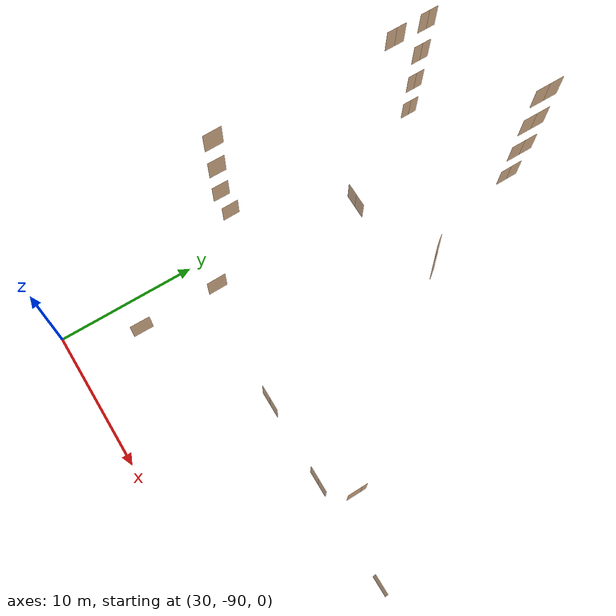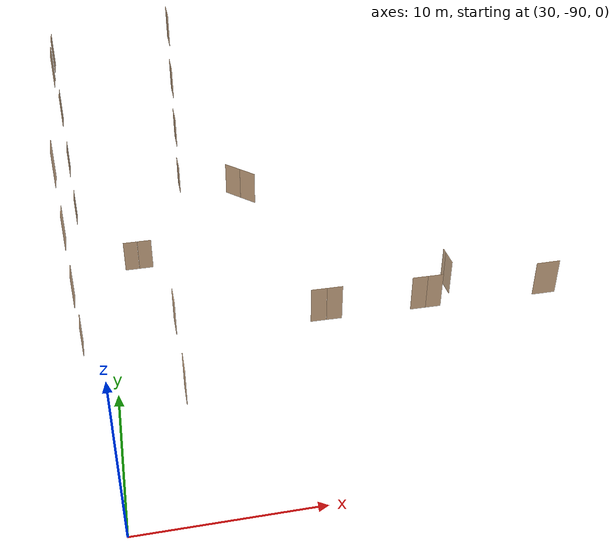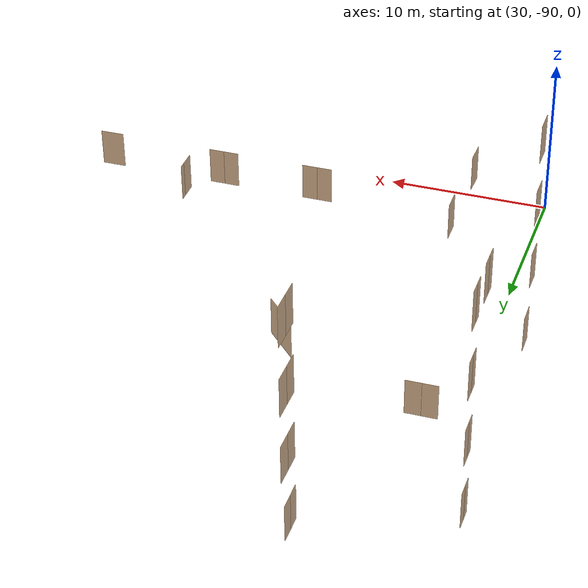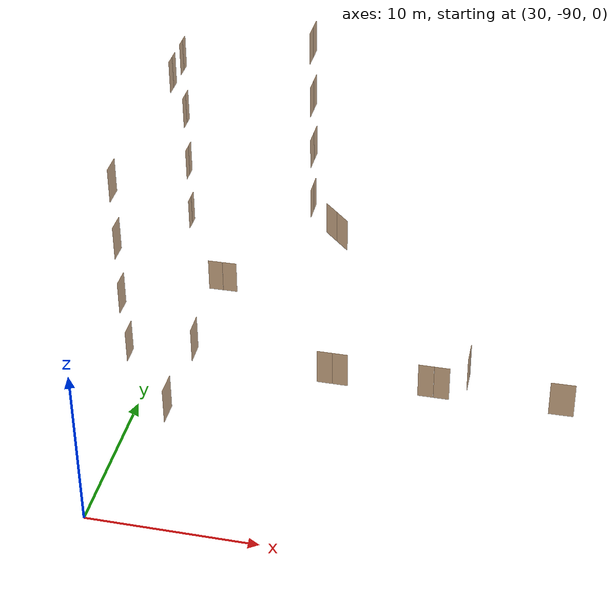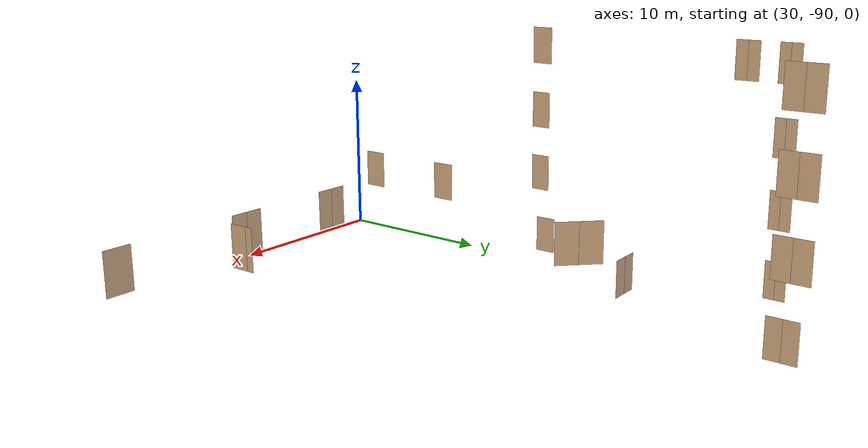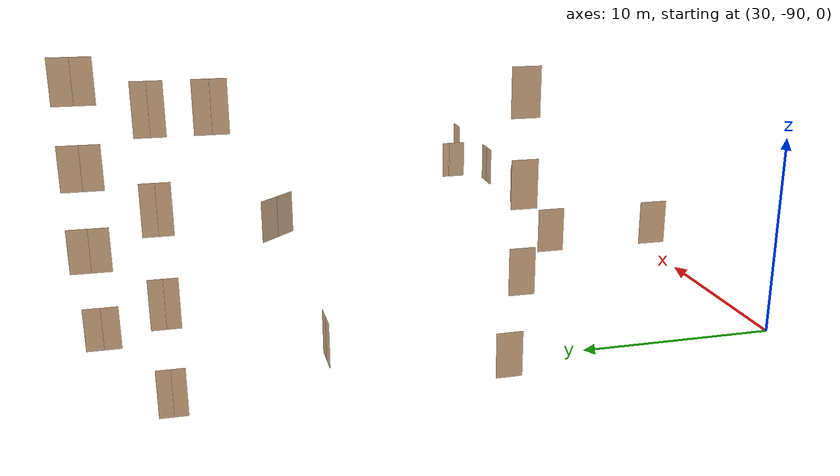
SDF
<sdf version="1.7">
 <world name="sim_world">
  <model name="Snull9">
   <pose>35.663947279991014 -57.37185901504682 0.0 0 0 -1.5624884779698478</pose>
   <link name="right">
    <pose>0.42133590085702205 0 1.11 0 0 0</pose>
    <visual name="right_visual">
     <geometry><box><size>0.8326718017140441 0.03 2.2</size></box></geometry>
     <material>
      <ambient>0.5 0.25 0 0.6</ambient>
      <diffuse>0.5 0.25 0 0.6</diffuse>
      <pbr><metal><metalness>0.0</metalness></metal></pbr>
     </material>
    </visual>
    <collision name="right_collision">
     <geometry><box><size>0.8326718017140441 0.03 2.2</size></box></geometry>
     <surface><contact><collide_bitmask>0x02</collide_bitmask></contact></surface>
    </collision>
    <inertial>
     <mass>50.0</mass>
     <inertia><ixx>20.17041666666667</ixx><iyy>23.055593039040474</iyy><izz>2.892676372373802</izz></inertia>
    </inertial>
   </link>
   <joint name="right_joint" type="revolute">
    <parent>world</parent>
    <child>right</child>
    <axis><xyz>0 0 -1</xyz><limit><lower>0</lower><upper>1.57</upper></limit></axis>
    <pose>0.42133590085702205 0 0 0 0 0</pose>
   </joint>
   <link name="left">
    <pose>-0.42133590085702205 0 1.11 0 0 0</pose>
    <visual name="left_visual">
     <geometry><box><size>0.8326718017140441 0.03 2.2</size></box></geometry>
     <material>
      <ambient>0.5 0.25 0 0.6</ambient>
      <diffuse>0.5 0.25 0 0.6</diffuse>
      <pbr><metal><metalness>0.0</metalness></metal></pbr>
     </material>
    </visual>
    <collision name="left_collision">
     <geometry><box><size>0.8326718017140441 0.03 2.2</size></box></geometry>
     <surface><contact><collide_bitmask>0x02</collide_bitmask></contact></surface>
    </collision>
    <inertial>
     <mass>50.0</mass>
     <inertia><ixx>20.17041666666667</ixx><iyy>23.055593039040474</iyy><izz>2.892676372373802</izz></inertia>
    </inertial>
   </link>
   <joint name="left_joint" type="revolute">
    <parent>world</parent>
    <child>left</child>
    <axis><xyz>0 0 -1</xyz><limit><lower>-1.57</lower><upper>0</upper></limit></axis>
    <pose>-0.42133590085702205 0 0 0 0 0</pose>
   </joint>
   <plugin name="register_component" filename="libregister_component.so">
    <component name="Door">
     <v_max_door>0.5</v_max_door>
     <a_max_door>0.3</a_max_door>
     <a_nom_door>0.15</a_nom_door>
     <dx_min_door>0.01</dx_min_door>
     <f_max_door>500.0</f_max_door>
     <ros_interface>true</ros_interface>
     <door name="Snull9" type="DoubleSwingDoor" left_joint_name="left_joint" right_joint_name="right_joint"/>
    </component>
   </plugin>
  </model>
  <model name="Snull15">
   <pose>28.084941940783317 -75.57958406451849 0.0 0 0 1.5806374847145241</pose>
   <link name="right">
    <pose>0 0 1.11 0 0 0</pose>
    <visual name="right_visual">
     <geometry><box><size>1.2572084339557512 0.03 2.2</size></box></geometry>
     <material>
      <ambient>0.5 0.25 0 0.6</ambient>
      <diffuse>0.5 0.25 0 0.6</diffuse>
      <pbr><metal><metalness>0.0</metalness></metal></pbr>
     </material>
    </visual>
    <collision name="right_collision">
     <geometry><box><size>1.2572084339557512 0.03 2.2</size></box></geometry>
     <surface><contact><collide_bitmask>0x02</collide_bitmask></contact></surface>
    </collision>
    <inertial>
     <mass>50.0</mass>
     <inertia><ixx>20.17041666666667</ixx><iyy>26.752387693372807</iyy><izz>6.589471026706136</izz></inertia>
    </inertial>
   </link>
   <joint name="right_joint" type="revolute">
    <parent>world</parent>
    <child>right</child>
    <axis><xyz>0 0 1</xyz><limit><lower>0</lower><upper>1.57</upper></limit></axis>
    <pose>0.6336042169778756 0 0 0 0 0</pose>
   </joint>
   <plugin name="register_component" filename="libregister_component.so">
    <component name="Door">
     <v_max_door>0.5</v_max_door>
     <a_max_door>0.3</a_max_door>
     <a_nom_door>0.15</a_nom_door>
     <dx_min_door>0.01</dx_min_door>
     <f_max_door>500.0</f_max_door>
     <ros_interface>true</ros_interface>
     <door name="Snull15" type="SwingDoor" left_joint_name="empty_joint" right_joint_name="right_joint"/>
    </component>
   </plugin>
  </model>
  <model name="Snull19">
   <pose>27.81230631370644 -60.652111413956575 0.0 0 0 1.5707963267948966</pose>
   <link name="right">
    <pose>0.3098140611581979 0 1.11 0 0 0</pose>
    <visual name="right_visual">
     <geometry><box><size>0.6096281223163957 0.03 2.2</size></box></geometry>
     <material>
      <ambient>0.5 0.25 0 0.6</ambient>
      <diffuse>0.5 0.25 0 0.6</diffuse>
      <pbr><metal><metalness>0.0</metalness></metal></pbr>
     </material>
    </visual>
    <collision name="right_collision">
     <geometry><box><size>0.6096281223163957 0.03 2.2</size></box></geometry>
     <surface><contact><collide_bitmask>0x02</collide_bitmask></contact></surface>
    </collision>
    <inertial>
     <mass>50.0</mass>
     <inertia><ixx>20.17041666666667</ixx><iyy>21.71519353132923</iyy><izz>1.55227686466256</izz></inertia>
    </inertial>
   </link>
   <joint name="right_joint" type="prismatic">
    <parent>world</parent>
    <child>right</child>
    <axis>
     <xyz>1 0 0</xyz>
     <limit><lower>0.0</lower><upper>0.6196281223163957</upper><effort>500.0</effort></limit>
    </axis>
   </joint>
   <link name="left">
    <pose>-0.3098140611581979 0 1.11 0 0 0</pose>
    <visual name="left_visual">
     <geometry><box><size>0.6096281223163957 0.03 2.2</size></box></geometry>
     <material>
      <ambient>0.5 0.25 0 0.6</ambient>
      <diffuse>0.5 0.25 0 0.6</diffuse>
      <pbr><metal><metalness>0.0</metalness></metal></pbr>
     </material>
    </visual>
    <collision name="left_collision">
     <geometry><box><size>0.6096281223163957 0.03 2.2</size></box></geometry>
     <surface><contact><collide_bitmask>0x02</collide_bitmask></contact></surface>
    </collision>
    <inertial>
     <mass>50.0</mass>
     <inertia><ixx>20.17041666666667</ixx><iyy>21.71519353132923</iyy><izz>1.55227686466256</izz></inertia>
    </inertial>
   </link>
   <joint name="left_joint" type="prismatic">
    <parent>world</parent>
    <child>left</child>
    <axis>
     <xyz>1 0 0</xyz>
     <limit><lower>-0.6196281223163957</lower><upper>0.0</upper><effort>500.0</effort></limit>
    </axis>
   </joint>
   <plugin name="register_component" filename="libregister_component.so">
    <component name="Door">
     <v_max_door>0.2</v_max_door>
     <a_max_door>0.2</a_max_door>
     <a_nom_door>0.08</a_nom_door>
     <dx_min_door>0.001</dx_min_door>
     <f_max_door>100.0</f_max_door>
     <ros_interface>true</ros_interface>
     <door name="Snull19" type="DoubleSlidingDoor" left_joint_name="left_joint" right_joint_name="right_joint"/>
    </component>
   </plugin>
  </model>
  <model name="Snull21">
   <pose>31.943863644849326 -67.73421573386099 0.0 0 0 -3.1266463520142143</pose>
   <link name="right">
    <pose>0.4677836453547332 0 1.11 0 0 0</pose>
    <visual name="right_visual">
     <geometry><box><size>0.9255672907094664 0.03 2.2</size></box></geometry>
     <material>
      <ambient>0.5 0.25 0 0.6</ambient>
      <diffuse>0.5 0.25 0 0.6</diffuse>
      <pbr><metal><metalness>0.0</metalness></metal></pbr>
     </material>
    </visual>
    <collision name="right_collision">
     <geometry><box><size>0.9255672907094664 0.03 2.2</size></box></geometry>
     <surface><contact><collide_bitmask>0x02</collide_bitmask></contact></surface>
    </collision>
    <inertial>
     <mass>50.0</mass>
     <inertia><ixx>20.17041666666667</ixx><iyy>23.736145040130264</iyy><izz>3.573228373463592</izz></inertia>
    </inertial>
   </link>
   <joint name="right_joint" type="revolute">
    <parent>world</parent>
    <child>right</child>
    <axis><xyz>0 0 1</xyz><limit><lower>0</lower><upper>1.57</upper></limit></axis>
    <pose>0.4677836453547332 0 0 0 0 0</pose>
   </joint>
   <link name="left">
    <pose>-0.4677836453547332 0 1.11 0 0 0</pose>
    <visual name="left_visual">
     <geometry><box><size>0.9255672907094664 0.03 2.2</size></box></geometry>
     <material>
      <ambient>0.5 0.25 0 0.6</ambient>
      <diffuse>0.5 0.25 0 0.6</diffuse>
      <pbr><metal><metalness>0.0</metalness></metal></pbr>
     </material>
    </visual>
    <collision name="left_collision">
     <geometry><box><size>0.9255672907094664 0.03 2.2</size></box></geometry>
     <surface><contact><collide_bitmask>0x02</collide_bitmask></contact></surface>
    </collision>
    <inertial>
     <mass>50.0</mass>
     <inertia><ixx>20.17041666666667</ixx><iyy>23.736145040130264</iyy><izz>3.573228373463592</izz></inertia>
    </inertial>
   </link>
   <joint name="left_joint" type="revolute">
    <parent>world</parent>
    <child>left</child>
    <axis><xyz>0 0 1</xyz><limit><lower>-1.57</lower><upper>0</upper></limit></axis>
    <pose>-0.4677836453547332 0 0 0 0 0</pose>
   </joint>
   <plugin name="register_component" filename="libregister_component.so">
    <component name="Door">
     <v_max_door>0.5</v_max_door>
     <a_max_door>0.3</a_max_door>
     <a_nom_door>0.15</a_nom_door>
     <dx_min_door>0.01</dx_min_door>
     <f_max_door>500.0</f_max_door>
     <ros_interface>true</ros_interface>
     <door name="Snull21" type="DoubleSwingDoor" left_joint_name="left_joint" right_joint_name="right_joint"/>
    </component>
   </plugin>
  </model>
  <model name="0null9">
   <pose>35.66852107680243 -57.16532875331363 4.0 0 0 -1.5745061043989732</pose>
   <link name="right">
    <pose>0.488130155778294 0 1.11 0 0 0</pose>
    <visual name="right_visual">
     <geometry><box><size>0.966260311556588 0.03 2.2</size></box></geometry>
     <material>
      <ambient>0.5 0.25 0 0.6</ambient>
      <diffuse>0.5 0.25 0 0.6</diffuse>
      <pbr><metal><metalness>0.0</metalness></metal></pbr>
     </material>
    </visual>
    <collision name="right_collision">
     <geometry><box><size>0.966260311556588 0.03 2.2</size></box></geometry>
     <surface><contact><collide_bitmask>0x02</collide_bitmask></contact></surface>
    </collision>
    <inertial>
     <mass>50.0</mass>
     <inertia><ixx>20.17041666666667</ixx><iyy>24.056912457039317</iyy><izz>3.893995790372644</izz></inertia>
    </inertial>
   </link>
   <joint name="right_joint" type="revolute">
    <parent>world</parent>
    <child>right</child>
    <axis><xyz>0 0 1</xyz><limit><lower>0</lower><upper>1.57</upper></limit></axis>
    <pose>0.488130155778294 0 0 0 0 0</pose>
   </joint>
   <link name="left">
    <pose>-0.488130155778294 0 1.11 0 0 0</pose>
    <visual name="left_visual">
     <geometry><box><size>0.966260311556588 0.03 2.2</size></box></geometry>
     <material>
      <ambient>0.5 0.25 0 0.6</ambient>
      <diffuse>0.5 0.25 0 0.6</diffuse>
      <pbr><metal><metalness>0.0</metalness></metal></pbr>
     </material>
    </visual>
    <collision name="left_collision">
     <geometry><box><size>0.966260311556588 0.03 2.2</size></box></geometry>
     <surface><contact><collide_bitmask>0x02</collide_bitmask></contact></surface>
    </collision>
    <inertial>
     <mass>50.0</mass>
     <inertia><ixx>20.17041666666667</ixx><iyy>24.056912457039317</iyy><izz>3.893995790372644</izz></inertia>
    </inertial>
   </link>
   <joint name="left_joint" type="revolute">
    <parent>world</parent>
    <child>left</child>
    <axis><xyz>0 0 1</xyz><limit><lower>-1.57</lower><upper>0</upper></limit></axis>
    <pose>-0.488130155778294 0 0 0 0 0</pose>
   </joint>
   <plugin name="register_component" filename="libregister_component.so">
    <component name="Door">
     <v_max_door>0.5</v_max_door>
     <a_max_door>0.3</a_max_door>
     <a_nom_door>0.15</a_nom_door>
     <dx_min_door>0.01</dx_min_door>
     <f_max_door>500.0</f_max_door>
     <ros_interface>true</ros_interface>
     <door name="0null9" type="DoubleSwingDoor" left_joint_name="left_joint" right_joint_name="right_joint"/>
    </component>
   </plugin>
  </model>
  <model name="0null15">
   <pose>28.038363887540584 -76.04984505096512 4.0 0 0 1.565694645745355</pose>
   <link name="right">
    <pose>0 0 1.11 0 0 0</pose>
    <visual name="right_visual">
     <geometry><box><size>1.1975727472500945 0.03 2.2</size></box></geometry>
     <material>
      <ambient>0.5 0.25 0 0.6</ambient>
      <diffuse>0.5 0.25 0 0.6</diffuse>
      <pbr><metal><metalness>0.0</metalness></metal></pbr>
     </material>
    </visual>
    <collision name="right_collision">
     <geometry><box><size>1.1975727472500945 0.03 2.2</size></box></geometry>
     <surface><contact><collide_bitmask>0x02</collide_bitmask></contact></surface>
    </collision>
    <inertial>
     <mass>50.0</mass>
     <inertia><ixx>20.17041666666667</ixx><iyy>26.14241868731725</iyy><izz>5.979502020650578</izz></inertia>
    </inertial>
   </link>
   <joint name="right_joint" type="revolute">
    <parent>world</parent>
    <child>right</child>
    <axis><xyz>0 0 1</xyz><limit><lower>0</lower><upper>1.57</upper></limit></axis>
    <pose>0.6037863736250473 0 0 0 0 0</pose>
   </joint>
   <plugin name="register_component" filename="libregister_component.so">
    <component name="Door">
     <v_max_door>0.5</v_max_door>
     <a_max_door>0.3</a_max_door>
     <a_nom_door>0.15</a_nom_door>
     <dx_min_door>0.01</dx_min_door>
     <f_max_door>500.0</f_max_door>
     <ros_interface>true</ros_interface>
     <door name="0null15" type="SwingDoor" left_joint_name="empty_joint" right_joint_name="right_joint"/>
    </component>
   </plugin>
  </model>
  <model name="0null19">
   <pose>27.81230631370644 -60.652111413956575 4.0 0 0 1.5707963267948966</pose>
   <link name="right">
    <pose>0.3098140611581979 0 1.11 0 0 0</pose>
    <visual name="right_visual">
     <geometry><box><size>0.6096281223163957 0.03 2.2</size></box></geometry>
     <material>
      <ambient>0.5 0.25 0 0.6</ambient>
      <diffuse>0.5 0.25 0 0.6</diffuse>
      <pbr><metal><metalness>0.0</metalness></metal></pbr>
     </material>
    </visual>
    <collision name="right_collision">
     <geometry><box><size>0.6096281223163957 0.03 2.2</size></box></geometry>
     <surface><contact><collide_bitmask>0x02</collide_bitmask></contact></surface>
    </collision>
    <inertial>
     <mass>50.0</mass>
     <inertia><ixx>20.17041666666667</ixx><iyy>21.71519353132923</iyy><izz>1.55227686466256</izz></inertia>
    </inertial>
   </link>
   <joint name="right_joint" type="prismatic">
    <parent>world</parent>
    <child>right</child>
    <axis>
     <xyz>1 0 0</xyz>
     <limit><lower>0.0</lower><upper>0.6196281223163957</upper><effort>500.0</effort></limit>
    </axis>
   </joint>
   <link name="left">
    <pose>-0.3098140611581979 0 1.11 0 0 0</pose>
    <visual name="left_visual">
     <geometry><box><size>0.6096281223163957 0.03 2.2</size></box></geometry>
     <material>
      <ambient>0.5 0.25 0 0.6</ambient>
      <diffuse>0.5 0.25 0 0.6</diffuse>
      <pbr><metal><metalness>0.0</metalness></metal></pbr>
     </material>
    </visual>
    <collision name="left_collision">
     <geometry><box><size>0.6096281223163957 0.03 2.2</size></box></geometry>
     <surface><contact><collide_bitmask>0x02</collide_bitmask></contact></surface>
    </collision>
    <inertial>
     <mass>50.0</mass>
     <inertia><ixx>20.17041666666667</ixx><iyy>21.71519353132923</iyy><izz>1.55227686466256</izz></inertia>
    </inertial>
   </link>
   <joint name="left_joint" type="prismatic">
    <parent>world</parent>
    <child>left</child>
    <axis>
     <xyz>1 0 0</xyz>
     <limit><lower>-0.6196281223163957</lower><upper>0.0</upper><effort>500.0</effort></limit>
    </axis>
   </joint>
   <plugin name="register_component" filename="libregister_component.so">
    <component name="Door">
     <v_max_door>0.2</v_max_door>
     <a_max_door>0.2</a_max_door>
     <a_nom_door>0.08</a_nom_door>
     <dx_min_door>0.001</dx_min_door>
     <f_max_door>100.0</f_max_door>
     <ros_interface>true</ros_interface>
     <door name="0null19" type="DoubleSlidingDoor" left_joint_name="left_joint" right_joint_name="right_joint"/>
    </component>
   </plugin>
  </model>
  <model name="0null44">
   <pose>41.968468804838864 -80.45021095471002 4.0 0 0 0.0</pose>
   <link name="right">
    <pose>0.450033603405144 0 1.11 0 0 0</pose>
    <visual name="right_visual">
     <geometry><box><size>0.890067206810288 0.03 2.2</size></box></geometry>
     <material>
      <ambient>0.5 0.25 0 0.6</ambient>
      <diffuse>0.5 0.25 0 0.6</diffuse>
      <pbr><metal><metalness>0.0</metalness></metal></pbr>
     </material>
    </visual>
    <collision name="right_collision">
     <geometry><box><size>0.890067206810288 0.03 2.2</size></box></geometry>
     <surface><contact><collide_bitmask>0x02</collide_bitmask></contact></surface>
    </collision>
    <inertial>
     <mass>50.0</mass>
     <inertia><ixx>20.17041666666667</ixx><iyy>23.467581802662785</iyy><izz>3.3046651359961166</izz></inertia>
    </inertial>
   </link>
   <joint name="right_joint" type="revolute">
    <parent>world</parent>
    <child>right</child>
    <axis><xyz>0 0 -1</xyz><limit><lower>0</lower><upper>1.57</upper></limit></axis>
    <pose>0.450033603405144 0 0 0 0 0</pose>
   </joint>
   <link name="left">
    <pose>-0.450033603405144 0 1.11 0 0 0</pose>
    <visual name="left_visual">
     <geometry><box><size>0.890067206810288 0.03 2.2</size></box></geometry>
     <material>
      <ambient>0.5 0.25 0 0.6</ambient>
      <diffuse>0.5 0.25 0 0.6</diffuse>
      <pbr><metal><metalness>0.0</metalness></metal></pbr>
     </material>
    </visual>
    <collision name="left_collision">
     <geometry><box><size>0.890067206810288 0.03 2.2</size></box></geometry>
     <surface><contact><collide_bitmask>0x02</collide_bitmask></contact></surface>
    </collision>
    <inertial>
     <mass>50.0</mass>
     <inertia><ixx>20.17041666666667</ixx><iyy>23.467581802662785</iyy><izz>3.3046651359961166</izz></inertia>
    </inertial>
   </link>
   <joint name="left_joint" type="revolute">
    <parent>world</parent>
    <child>left</child>
    <axis><xyz>0 0 -1</xyz><limit><lower>-1.57</lower><upper>0</upper></limit></axis>
    <pose>-0.450033603405144 0 0 0 0 0</pose>
   </joint>
   <plugin name="register_component" filename="libregister_component.so">
    <component name="Door">
     <v_max_door>0.5</v_max_door>
     <a_max_door>0.3</a_max_door>
     <a_nom_door>0.15</a_nom_door>
     <dx_min_door>0.01</dx_min_door>
     <f_max_door>500.0</f_max_door>
     <ros_interface>true</ros_interface>
     <door name="0null44" type="DoubleSwingDoor" left_joint_name="left_joint" right_joint_name="right_joint"/>
    </component>
   </plugin>
  </model>
  <model name="0null45">
   <pose>47.80160922973525 -80.45021095471002 4.0 0 0 0.0</pose>
   <link name="right">
    <pose>0.45003360340514575 0 1.11 0 0 0</pose>
    <visual name="right_visual">
     <geometry><box><size>0.8900672068102915 0.03 2.2</size></box></geometry>
     <material>
      <ambient>0.5 0.25 0 0.6</ambient>
      <diffuse>0.5 0.25 0 0.6</diffuse>
      <pbr><metal><metalness>0.0</metalness></metal></pbr>
     </material>
    </visual>
    <collision name="right_collision">
     <geometry><box><size>0.8900672068102915 0.03 2.2</size></box></geometry>
     <surface><contact><collide_bitmask>0x02</collide_bitmask></contact></surface>
    </collision>
    <inertial>
     <mass>50.0</mass>
     <inertia><ixx>20.17041666666667</ixx><iyy>23.467581802662814</iyy><izz>3.3046651359961428</izz></inertia>
    </inertial>
   </link>
   <joint name="right_joint" type="revolute">
    <parent>world</parent>
    <child>right</child>
    <axis><xyz>0 0 -1</xyz><limit><lower>0</lower><upper>1.57</upper></limit></axis>
    <pose>0.45003360340514575 0 0 0 0 0</pose>
   </joint>
   <link name="left">
    <pose>-0.45003360340514575 0 1.11 0 0 0</pose>
    <visual name="left_visual">
     <geometry><box><size>0.8900672068102915 0.03 2.2</size></box></geometry>
     <material>
      <ambient>0.5 0.25 0 0.6</ambient>
      <diffuse>0.5 0.25 0 0.6</diffuse>
      <pbr><metal><metalness>0.0</metalness></metal></pbr>
     </material>
    </visual>
    <collision name="left_collision">
     <geometry><box><size>0.8900672068102915 0.03 2.2</size></box></geometry>
     <surface><contact><collide_bitmask>0x02</collide_bitmask></contact></surface>
    </collision>
    <inertial>
     <mass>50.0</mass>
     <inertia><ixx>20.17041666666667</ixx><iyy>23.467581802662814</iyy><izz>3.3046651359961428</izz></inertia>
    </inertial>
   </link>
   <joint name="left_joint" type="revolute">
    <parent>world</parent>
    <child>left</child>
    <axis><xyz>0 0 -1</xyz><limit><lower>-1.57</lower><upper>0</upper></limit></axis>
    <pose>-0.45003360340514575 0 0 0 0 0</pose>
   </joint>
   <plugin name="register_component" filename="libregister_component.so">
    <component name="Door">
     <v_max_door>0.5</v_max_door>
     <a_max_door>0.3</a_max_door>
     <a_nom_door>0.15</a_nom_door>
     <dx_min_door>0.01</dx_min_door>
     <f_max_door>500.0</f_max_door>
     <ros_interface>true</ros_interface>
     <door name="0null45" type="DoubleSwingDoor" left_joint_name="left_joint" right_joint_name="right_joint"/>
    </component>
   </plugin>
  </model>
  <model name="0null46">
   <pose>49.5582459022514 -78.73606392114397 4.0 0 0 1.5927314753126312</pose>
   <link name="right">
    <pose>0.5027852228706735 0 1.11 0 0 0</pose>
    <visual name="right_visual">
     <geometry><box><size>0.3922281782965389 0.03 2.2</size></box></geometry>
     <material>
      <ambient>0.5 0.25 0 0.6</ambient>
      <diffuse>0.5 0.25 0 0.6</diffuse>
      <pbr><metal><metalness>0.0</metalness></metal></pbr>
     </material>
    </visual>
    <collision name="right_collision">
     <geometry><box><size>0.3922281782965389 0.03 2.2</size></box></geometry>
     <surface><contact><collide_bitmask>0x02</collide_bitmask></contact></surface>
    </collision>
    <inertial>
     <mass>50.0</mass>
     <inertia><ixx>20.17041666666667</ixx><iyy>20.807678932707592</iyy><izz>0.644762266040923</izz></inertia>
    </inertial>
   </link>
   <joint name="right_joint" type="revolute">
    <parent>world</parent>
    <child>right</child>
    <axis><xyz>0 0 -1</xyz><limit><lower>0</lower><upper>1.57</upper></limit></axis>
    <pose>0.20111408914826945 0 0 0 0 0</pose>
   </joint>
   <link name="left">
    <pose>-0.20111408914826945 0 1.11 0 0 0</pose>
    <visual name="left_visual">
     <geometry><box><size>0.995570445741347 0.03 2.2</size></box></geometry>
     <material>
      <ambient>0.5 0.25 0 0.6</ambient>
      <diffuse>0.5 0.25 0 0.6</diffuse>
      <pbr><metal><metalness>0.0</metalness></metal></pbr>
     </material>
    </visual>
    <collision name="left_collision">
     <geometry><box><size>0.995570445741347 0.03 2.2</size></box></geometry>
     <surface><contact><collide_bitmask>0x02</collide_bitmask></contact></surface>
    </collision>
    <inertial>
     <mass>50.0</mass>
     <inertia><ixx>20.17041666666667</ixx><iyy>24.296502135140106</iyy><izz>4.133585468473435</izz></inertia>
    </inertial>
   </link>
   <joint name="left_joint" type="revolute">
    <parent>world</parent>
    <child>left</child>
    <axis><xyz>0 0 -1</xyz><limit><lower>-1.57</lower><upper>0</upper></limit></axis>
    <pose>-0.5027852228706735 0 0 0 0 0</pose>
   </joint>
   <plugin name="register_component" filename="libregister_component.so">
    <component name="Door">
     <v_max_door>0.5</v_max_door>
     <a_max_door>0.3</a_max_door>
     <a_nom_door>0.15</a_nom_door>
     <dx_min_door>0.01</dx_min_door>
     <f_max_door>500.0</f_max_door>
     <ros_interface>true</ros_interface>
     <door name="0null46" type="DoubleSwingDoor" left_joint_name="left_joint" right_joint_name="right_joint"/>
    </component>
   </plugin>
  </model>
  <model name="0null47">
   <pose>55.0205727513721 -80.46839413060519 4.0 0 0 -3.1302739790294476</pose>
   <link name="right">
    <pose>0 0 1.11 0 0 0</pose>
    <visual name="right_visual">
     <geometry><box><size>1.4018815002880707 0.03 2.2</size></box></geometry>
     <material>
      <ambient>0.5 0.25 0 0.6</ambient>
      <diffuse>0.5 0.25 0 0.6</diffuse>
      <pbr><metal><metalness>0.0</metalness></metal></pbr>
     </material>
    </visual>
    <collision name="right_collision">
     <geometry><box><size>1.4018815002880707 0.03 2.2</size></box></geometry>
     <surface><contact><collide_bitmask>0x02</collide_bitmask></contact></surface>
    </collision>
    <inertial>
     <mass>50.0</mass>
     <inertia><ixx>20.17041666666667</ixx><iyy>28.355298920208057</iyy><izz>8.192382253541382</izz></inertia>
    </inertial>
   </link>
   <joint name="right_joint" type="revolute">
    <parent>world</parent>
    <child>right</child>
    <axis><xyz>0 0 -1</xyz><limit><lower>0</lower><upper>1.57</upper></limit></axis>
    <pose>0.7059407501440353 0 0 0 0 0</pose>
   </joint>
   <plugin name="register_component" filename="libregister_component.so">
    <component name="Door">
     <v_max_door>0.5</v_max_door>
     <a_max_door>0.3</a_max_door>
     <a_nom_door>0.15</a_nom_door>
     <dx_min_door>0.01</dx_min_door>
     <f_max_door>500.0</f_max_door>
     <ros_interface>true</ros_interface>
     <door name="0null47" type="SwingDoor" left_joint_name="empty_joint" right_joint_name="right_joint"/>
    </component>
   </plugin>
  </model>
  <model name="0null58">
   <pose>33.55398947093303 -79.47173580256128 4.0 0 0 -1.5568600437993017</pose>
   <link name="right">
    <pose>0 0 1.11 0 0 0</pose>
    <visual name="right_visual">
     <geometry><box><size>1.3322876860468875 0.03 2.2</size></box></geometry>
     <material>
      <ambient>0.5 0.25 0 0.6</ambient>
      <diffuse>0.5 0.25 0 0.6</diffuse>
      <pbr><metal><metalness>0.0</metalness></metal></pbr>
     </material>
    </visual>
    <collision name="right_collision">
     <geometry><box><size>1.3322876860468875 0.03 2.2</size></box></geometry>
     <surface><contact><collide_bitmask>0x02</collide_bitmask></contact></surface>
    </collision>
    <inertial>
     <mass>50.0</mass>
     <inertia><ixx>20.17041666666667</ixx><iyy>27.562460326634046</iyy><izz>7.3995436599673745</izz></inertia>
    </inertial>
   </link>
   <joint name="right_joint" type="revolute">
    <parent>world</parent>
    <child>right</child>
    <axis><xyz>0 0 -1</xyz><limit><lower>0</lower><upper>1.57</upper></limit></axis>
    <pose>0.6711438430234438 0 0 0 0 0</pose>
   </joint>
   <plugin name="register_component" filename="libregister_component.so">
    <component name="Door">
     <v_max_door>0.5</v_max_door>
     <a_max_door>0.3</a_max_door>
     <a_nom_door>0.15</a_nom_door>
     <dx_min_door>0.01</dx_min_door>
     <f_max_door>500.0</f_max_door>
     <ros_interface>true</ros_interface>
     <door name="0null58" type="SwingDoor" left_joint_name="empty_joint" right_joint_name="right_joint"/>
    </component>
   </plugin>
  </model>
  <model name="0null59">
   <pose>33.564985251838834 -85.02352238360149 4.0 0 0 -1.5789067086965276</pose>
   <link name="right">
    <pose>0 0 1.11 0 0 0</pose>
    <visual name="right_visual">
     <geometry><box><size>1.3895158415713826 0.03 2.2</size></box></geometry>
     <material>
      <ambient>0.5 0.25 0 0.6</ambient>
      <diffuse>0.5 0.25 0 0.6</diffuse>
      <pbr><metal><metalness>0.0</metalness></metal></pbr>
     </material>
    </visual>
    <collision name="right_collision">
     <geometry><box><size>1.3895158415713826 0.03 2.2</size></box></geometry>
     <surface><contact><collide_bitmask>0x02</collide_bitmask></contact></surface>
    </collision>
    <inertial>
     <mass>50.0</mass>
     <inertia><ixx>20.17041666666667</ixx><iyy>28.21147614157429</iyy><izz>8.048559474907616</izz></inertia>
    </inertial>
   </link>
   <joint name="right_joint" type="revolute">
    <parent>world</parent>
    <child>right</child>
    <axis><xyz>0 0 -1</xyz><limit><lower>0</lower><upper>1.57</upper></limit></axis>
    <pose>0.6997579207856913 0 0 0 0 0</pose>
   </joint>
   <plugin name="register_component" filename="libregister_component.so">
    <component name="Door">
     <v_max_door>0.5</v_max_door>
     <a_max_door>0.3</a_max_door>
     <a_nom_door>0.15</a_nom_door>
     <dx_min_door>0.01</dx_min_door>
     <f_max_door>500.0</f_max_door>
     <ros_interface>true</ros_interface>
     <door name="0null59" type="SwingDoor" left_joint_name="empty_joint" right_joint_name="right_joint"/>
    </component>
   </plugin>
  </model>
  <model name="0null178">
   <pose>39.23412239106894 -66.33920770638088 4.0 0 0 -0.7939281046788268</pose>
   <link name="right">
    <pose>0.6089753965193088 0 1.11 0 0 0</pose>
    <visual name="right_visual">
     <geometry><box><size>1.2079507930386175 0.03 2.2</size></box></geometry>
     <material>
      <ambient>0.5 0.25 0 0.6</ambient>
      <diffuse>0.5 0.25 0 0.6</diffuse>
      <pbr><metal><metalness>0.0</metalness></metal></pbr>
     </material>
    </visual>
    <collision name="right_collision">
     <geometry><box><size>1.2079507930386175 0.03 2.2</size></box></geometry>
     <surface><contact><collide_bitmask>0x02</collide_bitmask></contact></surface>
    </collision>
    <inertial>
     <mass>50.0</mass>
     <inertia><ixx>20.17041666666667</ixx><iyy>26.246437993344276</iyy><izz>6.083521326677604</izz></inertia>
    </inertial>
   </link>
   <joint name="right_joint" type="revolute">
    <parent>world</parent>
    <child>right</child>
    <axis><xyz>0 0 -1</xyz><limit><lower>0</lower><upper>1.57</upper></limit></axis>
    <pose>0.6089753965193088 0 0 0 0 0</pose>
   </joint>
   <link name="left">
    <pose>-0.6089753965193088 0 1.11 0 0 0</pose>
    <visual name="left_visual">
     <geometry><box><size>1.2079507930386175 0.03 2.2</size></box></geometry>
     <material>
      <ambient>0.5 0.25 0 0.6</ambient>
      <diffuse>0.5 0.25 0 0.6</diffuse>
      <pbr><metal><metalness>0.0</metalness></metal></pbr>
     </material>
    </visual>
    <collision name="left_collision">
     <geometry><box><size>1.2079507930386175 0.03 2.2</size></box></geometry>
     <surface><contact><collide_bitmask>0x02</collide_bitmask></contact></surface>
    </collision>
    <inertial>
     <mass>50.0</mass>
     <inertia><ixx>20.17041666666667</ixx><iyy>26.246437993344276</iyy><izz>6.083521326677604</izz></inertia>
    </inertial>
   </link>
   <joint name="left_joint" type="revolute">
    <parent>world</parent>
    <child>left</child>
    <axis><xyz>0 0 -1</xyz><limit><lower>-1.57</lower><upper>0</upper></limit></axis>
    <pose>-0.6089753965193088 0 0 0 0 0</pose>
   </joint>
   <plugin name="register_component" filename="libregister_component.so">
    <component name="Door">
     <v_max_door>0.5</v_max_door>
     <a_max_door>0.3</a_max_door>
     <a_nom_door>0.15</a_nom_door>
     <dx_min_door>0.01</dx_min_door>
     <f_max_door>500.0</f_max_door>
     <ros_interface>true</ros_interface>
     <door name="0null178" type="DoubleSwingDoor" left_joint_name="left_joint" right_joint_name="right_joint"/>
    </component>
   </plugin>
  </model>
  <model name="1null9">
   <pose>35.66852107680243 -57.16532875331363 8.0 0 0 -1.5745061043989732</pose>
   <link name="right">
    <pose>0.488130155778294 0 1.11 0 0 0</pose>
    <visual name="right_visual">
     <geometry><box><size>0.966260311556588 0.03 2.2</size></box></geometry>
     <material>
      <ambient>0.5 0.25 0 0.6</ambient>
      <diffuse>0.5 0.25 0 0.6</diffuse>
      <pbr><metal><metalness>0.0</metalness></metal></pbr>
     </material>
    </visual>
    <collision name="right_collision">
     <geometry><box><size>0.966260311556588 0.03 2.2</size></box></geometry>
     <surface><contact><collide_bitmask>0x02</collide_bitmask></contact></surface>
    </collision>
    <inertial>
     <mass>50.0</mass>
     <inertia><ixx>20.17041666666667</ixx><iyy>24.056912457039317</iyy><izz>3.893995790372644</izz></inertia>
    </inertial>
   </link>
   <joint name="right_joint" type="revolute">
    <parent>world</parent>
    <child>right</child>
    <axis><xyz>0 0 -1</xyz><limit><lower>0</lower><upper>1.57</upper></limit></axis>
    <pose>0.488130155778294 0 0 0 0 0</pose>
   </joint>
   <link name="left">
    <pose>-0.488130155778294 0 1.11 0 0 0</pose>
    <visual name="left_visual">
     <geometry><box><size>0.966260311556588 0.03 2.2</size></box></geometry>
     <material>
      <ambient>0.5 0.25 0 0.6</ambient>
      <diffuse>0.5 0.25 0 0.6</diffuse>
      <pbr><metal><metalness>0.0</metalness></metal></pbr>
     </material>
    </visual>
    <collision name="left_collision">
     <geometry><box><size>0.966260311556588 0.03 2.2</size></box></geometry>
     <surface><contact><collide_bitmask>0x02</collide_bitmask></contact></surface>
    </collision>
    <inertial>
     <mass>50.0</mass>
     <inertia><ixx>20.17041666666667</ixx><iyy>24.056912457039317</iyy><izz>3.893995790372644</izz></inertia>
    </inertial>
   </link>
   <joint name="left_joint" type="revolute">
    <parent>world</parent>
    <child>left</child>
    <axis><xyz>0 0 -1</xyz><limit><lower>-1.57</lower><upper>0</upper></limit></axis>
    <pose>-0.488130155778294 0 0 0 0 0</pose>
   </joint>
   <plugin name="register_component" filename="libregister_component.so">
    <component name="Door">
     <v_max_door>0.5</v_max_door>
     <a_max_door>0.3</a_max_door>
     <a_nom_door>0.15</a_nom_door>
     <dx_min_door>0.01</dx_min_door>
     <f_max_door>500.0</f_max_door>
     <ros_interface>true</ros_interface>
     <door name="1null9" type="DoubleSwingDoor" left_joint_name="left_joint" right_joint_name="right_joint"/>
    </component>
   </plugin>
  </model>
  <model name="1null15">
   <pose>28.038363887540584 -76.04984505096512 8.0 0 0 1.565694645745355</pose>
   <link name="right">
    <pose>0 0 1.11 0 0 0</pose>
    <visual name="right_visual">
     <geometry><box><size>1.1975727472500945 0.03 2.2</size></box></geometry>
     <material>
      <ambient>0.5 0.25 0 0.6</ambient>
      <diffuse>0.5 0.25 0 0.6</diffuse>
      <pbr><metal><metalness>0.0</metalness></metal></pbr>
     </material>
    </visual>
    <collision name="right_collision">
     <geometry><box><size>1.1975727472500945 0.03 2.2</size></box></geometry>
     <surface><contact><collide_bitmask>0x02</collide_bitmask></contact></surface>
    </collision>
    <inertial>
     <mass>50.0</mass>
     <inertia><ixx>20.17041666666667</ixx><iyy>26.14241868731725</iyy><izz>5.979502020650578</izz></inertia>
    </inertial>
   </link>
   <joint name="right_joint" type="revolute">
    <parent>world</parent>
    <child>right</child>
    <axis><xyz>0 0 1</xyz><limit><lower>0</lower><upper>1.57</upper></limit></axis>
    <pose>0.6037863736250473 0 0 0 0 0</pose>
   </joint>
   <plugin name="register_component" filename="libregister_component.so">
    <component name="Door">
     <v_max_door>0.5</v_max_door>
     <a_max_door>0.3</a_max_door>
     <a_nom_door>0.15</a_nom_door>
     <dx_min_door>0.01</dx_min_door>
     <f_max_door>500.0</f_max_door>
     <ros_interface>true</ros_interface>
     <door name="1null15" type="SwingDoor" left_joint_name="empty_joint" right_joint_name="right_joint"/>
    </component>
   </plugin>
  </model>
  <model name="1null19">
   <pose>27.81230631370644 -60.652111413956575 8.0 0 0 1.5707963267948966</pose>
   <link name="right">
    <pose>0.3098140611581979 0 1.11 0 0 0</pose>
    <visual name="right_visual">
     <geometry><box><size>0.6096281223163957 0.03 2.2</size></box></geometry>
     <material>
      <ambient>0.5 0.25 0 0.6</ambient>
      <diffuse>0.5 0.25 0 0.6</diffuse>
      <pbr><metal><metalness>0.0</metalness></metal></pbr>
     </material>
    </visual>
    <collision name="right_collision">
     <geometry><box><size>0.6096281223163957 0.03 2.2</size></box></geometry>
     <surface><contact><collide_bitmask>0x02</collide_bitmask></contact></surface>
    </collision>
    <inertial>
     <mass>50.0</mass>
     <inertia><ixx>20.17041666666667</ixx><iyy>21.71519353132923</iyy><izz>1.55227686466256</izz></inertia>
    </inertial>
   </link>
   <joint name="right_joint" type="prismatic">
    <parent>world</parent>
    <child>right</child>
    <axis>
     <xyz>1 0 0</xyz>
     <limit><lower>0.0</lower><upper>0.6196281223163957</upper><effort>500.0</effort></limit>
    </axis>
   </joint>
   <link name="left">
    <pose>-0.3098140611581979 0 1.11 0 0 0</pose>
    <visual name="left_visual">
     <geometry><box><size>0.6096281223163957 0.03 2.2</size></box></geometry>
     <material>
      <ambient>0.5 0.25 0 0.6</ambient>
      <diffuse>0.5 0.25 0 0.6</diffuse>
      <pbr><metal><metalness>0.0</metalness></metal></pbr>
     </material>
    </visual>
    <collision name="left_collision">
     <geometry><box><size>0.6096281223163957 0.03 2.2</size></box></geometry>
     <surface><contact><collide_bitmask>0x02</collide_bitmask></contact></surface>
    </collision>
    <inertial>
     <mass>50.0</mass>
     <inertia><ixx>20.17041666666667</ixx><iyy>21.71519353132923</iyy><izz>1.55227686466256</izz></inertia>
    </inertial>
   </link>
   <joint name="left_joint" type="prismatic">
    <parent>world</parent>
    <child>left</child>
    <axis>
     <xyz>1 0 0</xyz>
     <limit><lower>-0.6196281223163957</lower><upper>0.0</upper><effort>500.0</effort></limit>
    </axis>
   </joint>
   <plugin name="register_component" filename="libregister_component.so">
    <component name="Door">
     <v_max_door>0.2</v_max_door>
     <a_max_door>0.2</a_max_door>
     <a_nom_door>0.08</a_nom_door>
     <dx_min_door>0.001</dx_min_door>
     <f_max_door>100.0</f_max_door>
     <ros_interface>true</ros_interface>
     <door name="1null19" type="DoubleSlidingDoor" left_joint_name="left_joint" right_joint_name="right_joint"/>
    </component>
   </plugin>
  </model>
  <model name="2null9">
   <pose>35.66852107680243 -57.16532875331363 12.0 0 0 -1.5745061043989732</pose>
   <link name="right">
    <pose>0.488130155778294 0 1.11 0 0 0</pose>
    <visual name="right_visual">
     <geometry><box><size>0.966260311556588 0.03 2.2</size></box></geometry>
     <material>
      <ambient>0.5 0.25 0 0.6</ambient>
      <diffuse>0.5 0.25 0 0.6</diffuse>
      <pbr><metal><metalness>0.0</metalness></metal></pbr>
     </material>
    </visual>
    <collision name="right_collision">
     <geometry><box><size>0.966260311556588 0.03 2.2</size></box></geometry>
     <surface><contact><collide_bitmask>0x02</collide_bitmask></contact></surface>
    </collision>
    <inertial>
     <mass>50.0</mass>
     <inertia><ixx>20.17041666666667</ixx><iyy>24.056912457039317</iyy><izz>3.893995790372644</izz></inertia>
    </inertial>
   </link>
   <joint name="right_joint" type="revolute">
    <parent>world</parent>
    <child>right</child>
    <axis><xyz>0 0 -1</xyz><limit><lower>0</lower><upper>1.57</upper></limit></axis>
    <pose>0.488130155778294 0 0 0 0 0</pose>
   </joint>
   <link name="left">
    <pose>-0.488130155778294 0 1.11 0 0 0</pose>
    <visual name="left_visual">
     <geometry><box><size>0.966260311556588 0.03 2.2</size></box></geometry>
     <material>
      <ambient>0.5 0.25 0 0.6</ambient>
      <diffuse>0.5 0.25 0 0.6</diffuse>
      <pbr><metal><metalness>0.0</metalness></metal></pbr>
     </material>
    </visual>
    <collision name="left_collision">
     <geometry><box><size>0.966260311556588 0.03 2.2</size></box></geometry>
     <surface><contact><collide_bitmask>0x02</collide_bitmask></contact></surface>
    </collision>
    <inertial>
     <mass>50.0</mass>
     <inertia><ixx>20.17041666666667</ixx><iyy>24.056912457039317</iyy><izz>3.893995790372644</izz></inertia>
    </inertial>
   </link>
   <joint name="left_joint" type="revolute">
    <parent>world</parent>
    <child>left</child>
    <axis><xyz>0 0 -1</xyz><limit><lower>-1.57</lower><upper>0</upper></limit></axis>
    <pose>-0.488130155778294 0 0 0 0 0</pose>
   </joint>
   <plugin name="register_component" filename="libregister_component.so">
    <component name="Door">
     <v_max_door>0.5</v_max_door>
     <a_max_door>0.3</a_max_door>
     <a_nom_door>0.15</a_nom_door>
     <dx_min_door>0.01</dx_min_door>
     <f_max_door>500.0</f_max_door>
     <ros_interface>true</ros_interface>
     <door name="2null9" type="DoubleSwingDoor" left_joint_name="left_joint" right_joint_name="right_joint"/>
    </component>
   </plugin>
  </model>
  <model name="2null15">
   <pose>28.03089646417502 -76.0071687264309 12.0 0 0 1.577582638231415</pose>
   <link name="right">
    <pose>0 0 1.11 0 0 0</pose>
    <visual name="right_visual">
     <geometry><box><size>1.2829394539317445 0.03 2.2</size></box></geometry>
     <material>
      <ambient>0.5 0.25 0 0.6</ambient>
      <diffuse>0.5 0.25 0 0.6</diffuse>
      <pbr><metal><metalness>0.0</metalness></metal></pbr>
     </material>
    </visual>
    <collision name="right_collision">
     <geometry><box><size>1.2829394539317445 0.03 2.2</size></box></geometry>
     <surface><contact><collide_bitmask>0x02</collide_bitmask></contact></surface>
    </collision>
    <inertial>
     <mass>50.0</mass>
     <inertia><ixx>20.17041666666667</ixx><iyy>27.02472351022785</iyy><izz>6.861806843561178</izz></inertia>
    </inertial>
   </link>
   <joint name="right_joint" type="revolute">
    <parent>world</parent>
    <child>right</child>
    <axis><xyz>0 0 1</xyz><limit><lower>0</lower><upper>1.57</upper></limit></axis>
    <pose>0.6464697269658722 0 0 0 0 0</pose>
   </joint>
   <plugin name="register_component" filename="libregister_component.so">
    <component name="Door">
     <v_max_door>0.5</v_max_door>
     <a_max_door>0.3</a_max_door>
     <a_nom_door>0.15</a_nom_door>
     <dx_min_door>0.01</dx_min_door>
     <f_max_door>500.0</f_max_door>
     <ros_interface>true</ros_interface>
     <door name="2null15" type="SwingDoor" left_joint_name="empty_joint" right_joint_name="right_joint"/>
    </component>
   </plugin>
  </model>
  <model name="2null19">
   <pose>27.81230631370644 -60.652111413956575 12.0 0 0 1.5707963267948966</pose>
   <link name="right">
    <pose>0.3098140611581979 0 1.11 0 0 0</pose>
    <visual name="right_visual">
     <geometry><box><size>0.6096281223163957 0.03 2.2</size></box></geometry>
     <material>
      <ambient>0.5 0.25 0 0.6</ambient>
      <diffuse>0.5 0.25 0 0.6</diffuse>
      <pbr><metal><metalness>0.0</metalness></metal></pbr>
     </material>
    </visual>
    <collision name="right_collision">
     <geometry><box><size>0.6096281223163957 0.03 2.2</size></box></geometry>
     <surface><contact><collide_bitmask>0x02</collide_bitmask></contact></surface>
    </collision>
    <inertial>
     <mass>50.0</mass>
     <inertia><ixx>20.17041666666667</ixx><iyy>21.71519353132923</iyy><izz>1.55227686466256</izz></inertia>
    </inertial>
   </link>
   <joint name="right_joint" type="prismatic">
    <parent>world</parent>
    <child>right</child>
    <axis>
     <xyz>1 0 0</xyz>
     <limit><lower>0.0</lower><upper>0.6196281223163957</upper><effort>500.0</effort></limit>
    </axis>
   </joint>
   <link name="left">
    <pose>-0.3098140611581979 0 1.11 0 0 0</pose>
    <visual name="left_visual">
     <geometry><box><size>0.6096281223163957 0.03 2.2</size></box></geometry>
     <material>
      <ambient>0.5 0.25 0 0.6</ambient>
      <diffuse>0.5 0.25 0 0.6</diffuse>
      <pbr><metal><metalness>0.0</metalness></metal></pbr>
     </material>
    </visual>
    <collision name="left_collision">
     <geometry><box><size>0.6096281223163957 0.03 2.2</size></box></geometry>
     <surface><contact><collide_bitmask>0x02</collide_bitmask></contact></surface>
    </collision>
    <inertial>
     <mass>50.0</mass>
     <inertia><ixx>20.17041666666667</ixx><iyy>21.71519353132923</iyy><izz>1.55227686466256</izz></inertia>
    </inertial>
   </link>
   <joint name="left_joint" type="prismatic">
    <parent>world</parent>
    <child>left</child>
    <axis>
     <xyz>1 0 0</xyz>
     <limit><lower>-0.6196281223163957</lower><upper>0.0</upper><effort>500.0</effort></limit>
    </axis>
   </joint>
   <plugin name="register_component" filename="libregister_component.so">
    <component name="Door">
     <v_max_door>0.2</v_max_door>
     <a_max_door>0.2</a_max_door>
     <a_nom_door>0.08</a_nom_door>
     <dx_min_door>0.001</dx_min_door>
     <f_max_door>100.0</f_max_door>
     <ros_interface>true</ros_interface>
     <door name="2null19" type="DoubleSlidingDoor" left_joint_name="left_joint" right_joint_name="right_joint"/>
    </component>
   </plugin>
  </model>
  <model name="2null20">
   <pose>27.81230631370644 -62.99546354030538 12.0 0 0 1.5707963267948966</pose>
   <link name="right">
    <pose>0.34362282044580716 0 1.11 0 0 0</pose>
    <visual name="right_visual">
     <geometry><box><size>0.6772456408916143 0.03 2.2</size></box></geometry>
     <material>
      <ambient>0.5 0.25 0 0.6</ambient>
      <diffuse>0.5 0.25 0 0.6</diffuse>
      <pbr><metal><metalness>0.0</metalness></metal></pbr>
     </material>
    </visual>
    <collision name="right_collision">
     <geometry><box><size>0.6772456408916143 0.03 2.2</size></box></geometry>
     <surface><contact><collide_bitmask>0x02</collide_bitmask></contact></surface>
    </collision>
    <inertial>
     <mass>50.0</mass>
     <inertia><ixx>20.17041666666667</ixx><iyy>22.077756908777896</iyy><izz>1.9148402421112227</izz></inertia>
    </inertial>
   </link>
   <joint name="right_joint" type="prismatic">
    <parent>world</parent>
    <child>right</child>
    <axis>
     <xyz>1 0 0</xyz>
     <limit><lower>0.0</lower><upper>0.6872456408916143</upper><effort>500.0</effort></limit>
    </axis>
   </joint>
   <link name="left">
    <pose>-0.34362282044580716 0 1.11 0 0 0</pose>
    <visual name="left_visual">
     <geometry><box><size>0.6772456408916143 0.03 2.2</size></box></geometry>
     <material>
      <ambient>0.5 0.25 0 0.6</ambient>
      <diffuse>0.5 0.25 0 0.6</diffuse>
      <pbr><metal><metalness>0.0</metalness></metal></pbr>
     </material>
    </visual>
    <collision name="left_collision">
     <geometry><box><size>0.6772456408916143 0.03 2.2</size></box></geometry>
     <surface><contact><collide_bitmask>0x02</collide_bitmask></contact></surface>
    </collision>
    <inertial>
     <mass>50.0</mass>
     <inertia><ixx>20.17041666666667</ixx><iyy>22.077756908777896</iyy><izz>1.9148402421112227</izz></inertia>
    </inertial>
   </link>
   <joint name="left_joint" type="prismatic">
    <parent>world</parent>
    <child>left</child>
    <axis>
     <xyz>1 0 0</xyz>
     <limit><lower>-0.6872456408916143</lower><upper>0.0</upper><effort>500.0</effort></limit>
    </axis>
   </joint>
   <plugin name="register_component" filename="libregister_component.so">
    <component name="Door">
     <v_max_door>0.2</v_max_door>
     <a_max_door>0.2</a_max_door>
     <a_nom_door>0.08</a_nom_door>
     <dx_min_door>0.001</dx_min_door>
     <f_max_door>100.0</f_max_door>
     <ros_interface>true</ros_interface>
     <door name="2null20" type="DoubleSlidingDoor" left_joint_name="left_joint" right_joint_name="right_joint"/>
    </component>
   </plugin>
  </model>
 </world>
</sdf>
